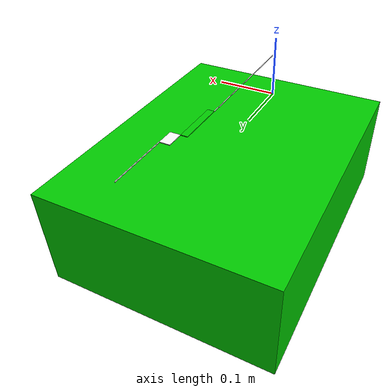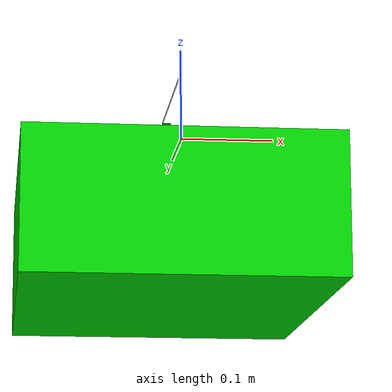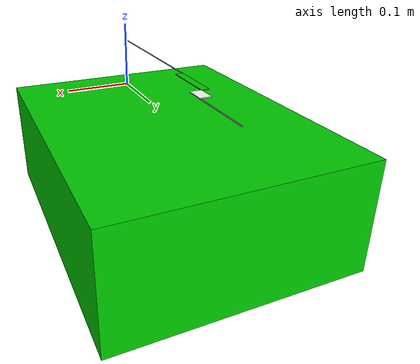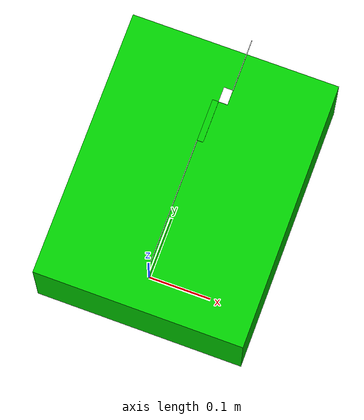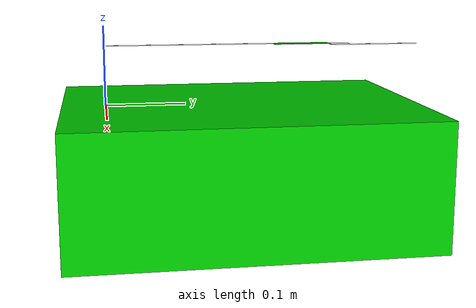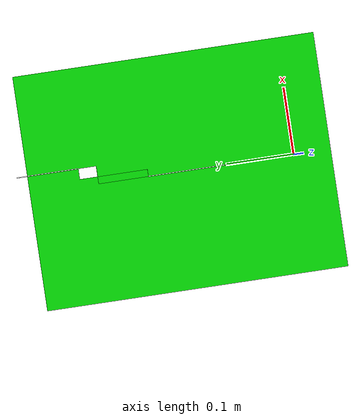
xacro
<?xml version="1.0" encoding="utf-8"?>

<robot name="six_dof_spatial_manipulator" xmlns:xacro="http://ros.org/wiki/xacro">

  <material name="blue">
	  <color rgba="0 0 0.8 1"/>
   </material>

   <material name="green">
      <color rgba="0.0 0.8 0.0 1.0"/>
   </material>

   <material name="white">
	   <color rgba="1 1 1 1"/>
   </material>

   <link name="world">
      <visual>
         <geometry>
            <box size="0.35 0.45 0.16"/>
         </geometry>
         <material name="green"/>
         <origin rpy="0 0 0" xyz="0 0.17 -0.08"/>
       </visual>
   </link>

   <joint name="base_joint" type="fixed">
        <origin rpy="0 0 0" xyz="0 0 0"/>
        <parent link="world"/>
        <child link="base_link"/>
   </joint>

   <link name="base_link">
      <visual>
         <geometry>
            <box size="0.001 0.001 0.075"/>
         </geometry>
         <material name="white"/>
         <origin rpy="0 0 0" xyz="0 0 0.0375"/>
       </visual>
   </link>

   <joint name="joint1" type="revolute">
        <axis xyz="0 0 1"/>
        <limit effort="0.01" lower="-0.523" upper="2.62" velocity="0.05"/>
        <origin rpy="0 0 0" xyz="0 0 0.075"/>
        <parent link="base_link"/>
        <child link="link3"/>
   </joint>

   <link name="link3">
      <visual>
         <geometry>
            <box size="0.001 0.145 0.001"/>
         </geometry>
         <material name="white"/>
         <origin rpy="0 0 0" xyz="0 0.0725 0"/>
       </visual>
   </link>

   <joint name="joint3" type="revolute">
        <axis xyz="1 0 0"/>
        <limit effort="0.1" lower="-0.523" upper="1.047" velocity="0.5"/>
        <origin rpy="0 0 0" xyz="0 0.145 0"/>
        <parent link="link3"/>
        <child link="link4"/>
   </joint>

   <link name="link4">
      <visual>
         <geometry>
            <box size="0.001 0.07 0.001"/>
         </geometry>
         <material name="white"/>
         <origin rpy="0 0 0" xyz="0 0.035 0"/>
       </visual>
   </link>

   <joint name="joint4" type="revolute">
      <axis xyz="-1 0 0"/>
      <limit effort="0.01" lower="-1.407" upper="0.698" velocity="0.05"/>
      <origin rpy="0 0 0" xyz="0.01 0.07 0"/>
      <parent link="link4"/>
      <child link="link5"/>
   </joint>

   <link name="link5">
      <visual>
         <geometry>
            <box size="0.01 0.07 0.001"/>
         </geometry>
         <material name="green"/>
         <origin rpy="0 0 0" xyz="-0.005 0.035 0"/>
         </visual>
   </link>

   <joint name="joint5" type="revolute">
        <axis xyz="0 1 0"/>
        <limit effort="0.01" lower="-1.745" upper="1.396" velocity="0.05"/>
        <origin rpy="0 0 0" xyz="0 0.07 0"/>
        <parent link="link5"/>
        <child link="link6"/>
   </joint>

   <link name="link6">
      <visual>
         <geometry>
            <box size="0.015 0.025 0.001"/>
         </geometry>
         <material name="white"/>
         <origin rpy="0 0 0" xyz="0.0075 0.0125 0"/>
       </visual>
   </link>

   <joint name="joint6" type="revolute">
        <axis xyz="0 0 1"/>
        <limit effort="0.01" lower="0" upper="3.14" velocity="0.05"/>
        <origin rpy="0 0 0" xyz="0.015 0.025 0"/>
        <parent link="link6"/>
        <child link="endeff1"/>
   </joint>

   <link name="endeff1">
      <visual>
         <geometry>
            <box size="0.001 0.087 0.001"/>
         </geometry>
         <material name="white"/>
         <origin rpy="0 0 0" xyz="0 0.0435 0"/>
       </visual>
   </link>

</robot>
